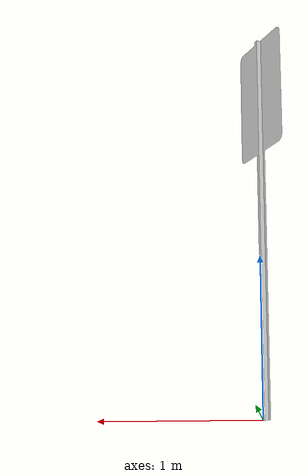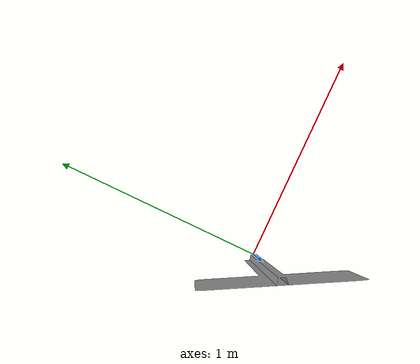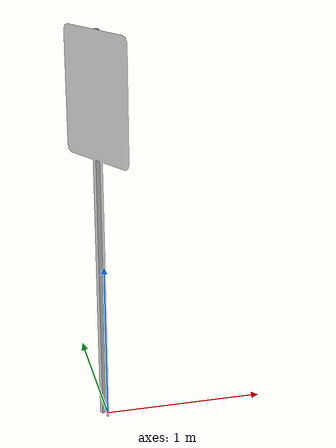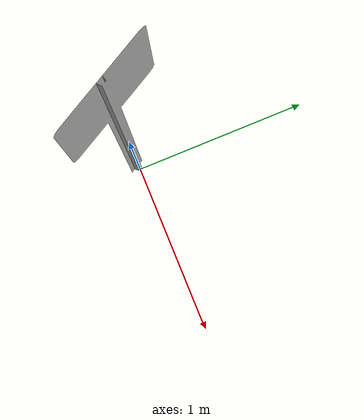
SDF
<?xml version="1.0"?>
<sdf version="1.4">

    <model name="limit35">
      <pose>0 0 0  0 0 0</pose>
      <static>true</static>
      <link name="body">
        <visual name="visual">
          <pose>0 0 0 0 0 0</pose>
	  <geometry>
            <mesh><uri>file:///usr/share/gazebo-7/models/limit35/limit35.dae</uri></mesh>

	  </geometry>
        </visual>
	<collision name="collision">
	  <pose>0 0 0 0 0 0</pose>
	  <geometry>
	    <mesh><uri>file:///usr/share/gazebo-7/models/limit35/limit35.dae</uri></mesh>
	  </geometry>
	</collision>
      </link>
    </model>
</sdf>
